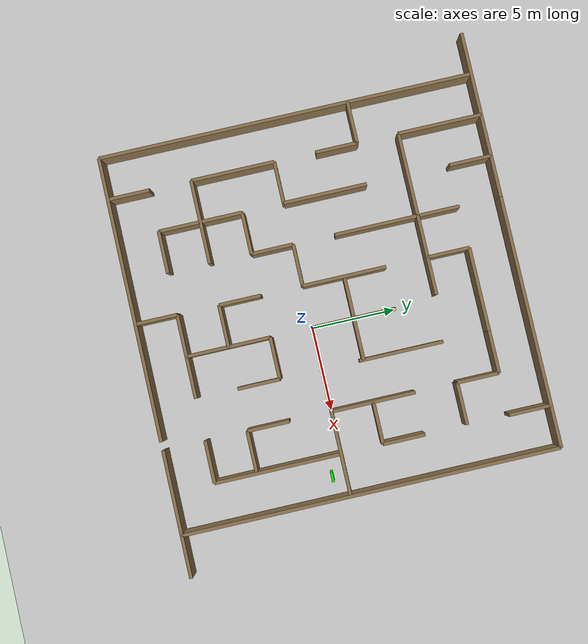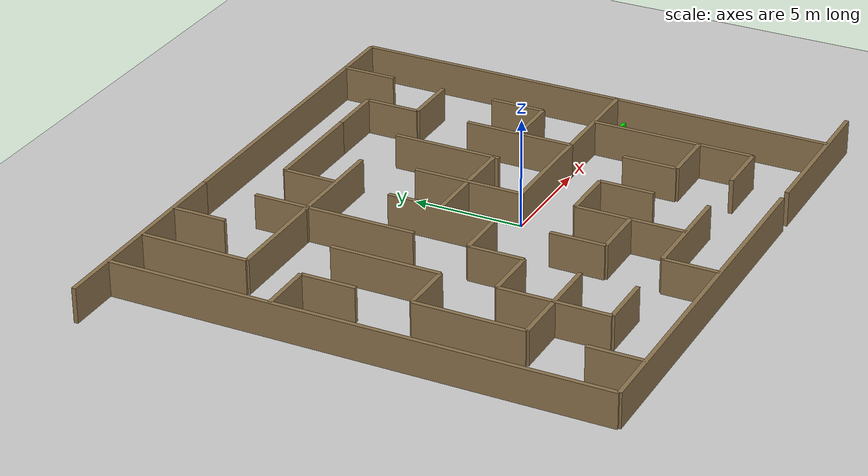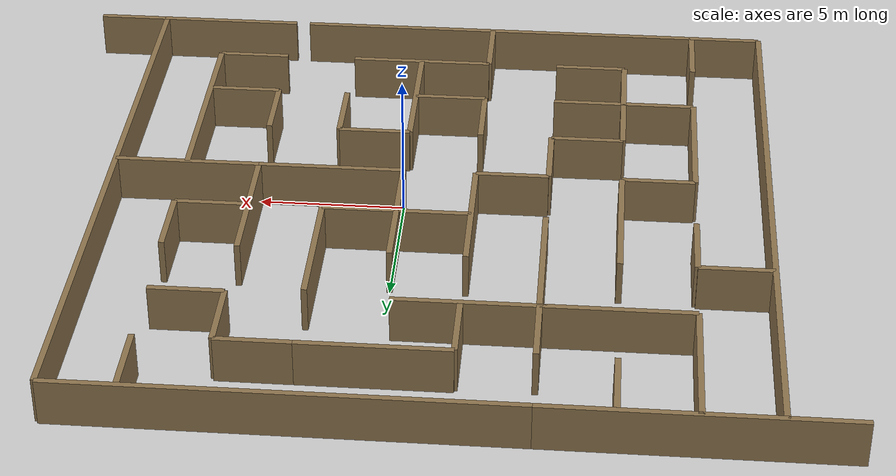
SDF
<?xml version="1.0" ?>
<sdf version="1.6">
  <world name="maze_world">

    <include>
      <uri>model://ground_plane</uri>
    </include>
    <include>
      <uri>model://sun</uri>
    </include>

    <physics type="ode">
      <real_time_update_rate>1000.0</real_time_update_rate>
      <max_step_size>0.001</max_step_size>
      <real_time_factor>1</real_time_factor>
    </physics>

    <!-- ════════════════════
         미로: 25x25m (실제 22.5x22.5), 셀 2.5m, 9x9
         입구: 북쪽 col=1 (x=-8.75, y=12.5)
         출구: 남쪽 col=7 (x=6.25, y=-10.0)
         ════════════════════ -->

    <!-- 외벽 -->
    <model name="outer_N_left">
      <static>true</static>
      <pose>-10.0000 12.5000 0.8000 0 0 0</pose>
      <link name="link">
        <collision name="collision">
          <geometry><box><size>10.0000 0.2000 1.6000</size></box></geometry>
        </collision>
        <visual name="visual">
          <geometry><box><size>10.0000 0.2000 1.6000</size></box></geometry>
          <material><ambient>0.45 0.35 0.25 1</ambient><diffuse>0.55 0.45 0.30 1</diffuse></material>
        </visual>
      </link>
    </model>
    <model name="outer_N_right">
      <static>true</static>
      <pose>2.5000 12.5000 0.8000 0 0 0</pose>
      <link name="link">
        <collision name="collision">
          <geometry><box><size>15.0000 0.2000 1.6000</size></box></geometry>
        </collision>
        <visual name="visual">
          <geometry><box><size>15.0000 0.2000 1.6000</size></box></geometry>
          <material><ambient>0.45 0.35 0.25 1</ambient><diffuse>0.55 0.45 0.30 1</diffuse></material>
        </visual>
      </link>
    </model>
    <model name="outer_S_left">
      <static>true</static>
      <pose>-4.0000 -10.0000 0.8000 0 0 0</pose>
      <link name="link">
        <collision name="collision">
          <geometry><box><size>17.0000 0.2000 1.6000</size></box></geometry>
        </collision>
        <visual name="visual">
          <geometry><box><size>17.0000 0.2000 1.6000</size></box></geometry>
          <material><ambient>0.45 0.35 0.25 1</ambient><diffuse>0.55 0.45 0.30 1</diffuse></material>
        </visual>
      </link>
    </model>
    <model name="outer_S_right">
      <static>true</static>
      <pose>8.7500 -10.0000 0.8000 0 0 0</pose>
      <link name="link">
        <collision name="collision">
          <geometry><box><size>7.5000 0.2000 1.6000</size></box></geometry>
        </collision>
        <visual name="visual">
          <geometry><box><size>7.5000 0.2000 1.6000</size></box></geometry>
          <material><ambient>0.45 0.35 0.25 1</ambient><diffuse>0.55 0.45 0.30 1</diffuse></material>
        </visual>
      </link>
    </model>
    <model name="outer_W">
      <static>true</static>
      <pose>-12.5000 1.2500 0.8000 0 0 0</pose>
      <link name="link">
        <collision name="collision">
          <geometry><box><size>0.2000 22.5000 1.6000</size></box></geometry>
        </collision>
        <visual name="visual">
          <geometry><box><size>0.2000 22.5000 1.6000</size></box></geometry>
          <material><ambient>0.45 0.35 0.25 1</ambient><diffuse>0.55 0.45 0.30 1</diffuse></material>
        </visual>
      </link>
    </model>
    <model name="outer_E">
      <static>true</static>
      <pose>10.0000 1.2500 0.8000 0 0 0</pose>
      <link name="link">
        <collision name="collision">
          <geometry><box><size>0.2000 22.5000 1.6000</size></box></geometry>
        </collision>
        <visual name="visual">
          <geometry><box><size>0.2000 22.5000 1.6000</size></box></geometry>
          <material><ambient>0.45 0.35 0.25 1</ambient><diffuse>0.55 0.45 0.30 1</diffuse></material>
        </visual>
      </link>
    </model>
    <model name="h_1_0">
      <static>true</static>
      <pose>0.0000 10.0000 0.8000 0 0 0</pose>
      <link name="link">
        <collision name="collision">
          <geometry><box><size>5.0000 0.2000 1.6000</size></box></geometry>
        </collision>
        <visual name="visual">
          <geometry><box><size>5.0000 0.2000 1.6000</size></box></geometry>
          <material>
            <ambient>0.45 0.35 0.25 1</ambient>
            <diffuse>0.55 0.45 0.30 1</diffuse>
          </material>
        </visual>
      </link>
    </model>
    <model name="h_1_1">
      <static>true</static>
      <pose>3.7500 10.0000 0.8000 0 0 0</pose>
      <link name="link">
        <collision name="collision">
          <geometry><box><size>2.5000 0.2000 1.6000</size></box></geometry>
        </collision>
        <visual name="visual">
          <geometry><box><size>2.5000 0.2000 1.6000</size></box></geometry>
          <material>
            <ambient>0.45 0.35 0.25 1</ambient>
            <diffuse>0.55 0.45 0.30 1</diffuse>
          </material>
        </visual>
      </link>
    </model>
    <model name="h_2_2">
      <static>true</static>
      <pose>-7.5000 7.5000 0.8000 0 0 0</pose>
      <link name="link">
        <collision name="collision">
          <geometry><box><size>5.0000 0.2000 1.6000</size></box></geometry>
        </collision>
        <visual name="visual">
          <geometry><box><size>5.0000 0.2000 1.6000</size></box></geometry>
          <material>
            <ambient>0.45 0.35 0.25 1</ambient>
            <diffuse>0.55 0.45 0.30 1</diffuse>
          </material>
        </visual>
      </link>
    </model>
    <model name="h_2_3">
      <static>true</static>
      <pose>-2.7500 7.5000 0.8000 0 0 0</pose>
      <link name="link">
        <collision name="collision">
          <geometry><box><size>5.0000 0.2000 1.6000</size></box></geometry>
        </collision>
        <visual name="visual">
          <geometry><box><size>5.0000 0.2000 1.6000</size></box></geometry>
          <material>
            <ambient>0.45 0.35 0.25 1</ambient>
            <diffuse>0.55 0.45 0.30 1</diffuse>
          </material>
        </visual>
      </link>
    </model>
    <model name="h_2_4">
      <static>true</static>
      <pose>6.2500 7.5000 0.8000 0 0 0</pose>
      <link name="link">
        <collision name="collision">
          <geometry><box><size>2.5000 0.2000 1.6000</size></box></geometry>
        </collision>
        <visual name="visual">
          <geometry><box><size>2.5000 0.2000 1.6000</size></box></geometry>
          <material>
            <ambient>0.45 0.35 0.25 1</ambient>
            <diffuse>0.55 0.45 0.30 1</diffuse>
          </material>
        </visual>
      </link>
    </model>
    <model name="h_3_5">
      <static>true</static>
      <pose>-11.2500 5.0000 0.8000 0 0 0</pose>
      <link name="link">
        <collision name="collision">
          <geometry><box><size>2.5000 0.2000 1.6000</size></box></geometry>
        </collision>
        <visual name="visual">
          <geometry><box><size>2.5000 0.2000 1.6000</size></box></geometry>
          <material>
            <ambient>0.45 0.35 0.25 1</ambient>
            <diffuse>0.55 0.45 0.30 1</diffuse>
          </material>
        </visual>
      </link>
    </model>
    <model name="h_4_6">
      <static>true</static>
      <pose>0.0000 2.5000 0.8000 0 0 0</pose>
      <link name="link">
        <collision name="collision">
          <geometry><box><size>5.0000 0.2000 1.6000</size></box></geometry>
        </collision>
        <visual name="visual">
          <geometry><box><size>5.0000 0.2000 1.6000</size></box></geometry>
          <material>
            <ambient>0.45 0.35 0.25 1</ambient>
            <diffuse>0.55 0.45 0.30 1</diffuse>
          </material>
        </visual>
      </link>
    </model>
    <model name="h_4_7">
      <static>true</static>
      <pose>6.2500 2.5000 0.8000 0 0 0</pose>
      <link name="link">
        <collision name="collision">
          <geometry><box><size>2.5000 0.2000 1.6000</size></box></geometry>
        </collision>
        <visual name="visual">
          <geometry><box><size>2.5000 0.2000 1.6000</size></box></geometry>
          <material>
            <ambient>0.45 0.35 0.25 1</ambient>
            <diffuse>0.55 0.45 0.30 1</diffuse>
          </material>
        </visual>
      </link>
    </model>
    <model name="h_5_8">
      <static>true</static>
      <pose>-8.7500 0.0000 0.8000 0 0 0</pose>
      <link name="link">
        <collision name="collision">
          <geometry><box><size>2.5000 0.2000 1.6000</size></box></geometry>
        </collision>
        <visual name="visual">
          <geometry><box><size>2.5000 0.2000 1.6000</size></box></geometry>
          <material>
            <ambient>0.45 0.35 0.25 1</ambient>
            <diffuse>0.55 0.45 0.30 1</diffuse>
          </material>
        </visual>
      </link>
    </model>
    <model name="h_5_9">
      <static>true</static>
      <pose>-3.7500 0.0000 0.8000 0 0 0</pose>
      <link name="link">
        <collision name="collision">
          <geometry><box><size>2.5000 0.2000 1.6000</size></box></geometry>
        </collision>
        <visual name="visual">
          <geometry><box><size>2.5000 0.2000 1.6000</size></box></geometry>
          <material>
            <ambient>0.45 0.35 0.25 1</ambient>
            <diffuse>0.55 0.45 0.30 1</diffuse>
          </material>
        </visual>
      </link>
    </model>
    <model name="h_5_10">
      <static>true</static>
      <pose>2.5000 0.0000 0.8000 0 0 0</pose>
      <link name="link">
        <collision name="collision">
          <geometry><box><size>5.0000 0.2000 1.6000</size></box></geometry>
        </collision>
        <visual name="visual">
          <geometry><box><size>5.0000 0.2000 1.6000</size></box></geometry>
          <material>
            <ambient>0.45 0.35 0.25 1</ambient>
            <diffuse>0.55 0.45 0.30 1</diffuse>
          </material>
        </visual>
      </link>
    </model>
    <model name="h_5_11">
      <static>true</static>
      <pose>7.5000 0.0000 0.8000 0 0 0</pose>
      <link name="link">
        <collision name="collision">
          <geometry><box><size>5.0000 0.2000 1.6000</size></box></geometry>
        </collision>
        <visual name="visual">
          <geometry><box><size>5.0000 0.2000 1.6000</size></box></geometry>
          <material>
            <ambient>0.45 0.35 0.25 1</ambient>
            <diffuse>0.55 0.45 0.30 1</diffuse>
          </material>
        </visual>
      </link>
    </model>
    <model name="h_6_12">
      <static>true</static>
      <pose>-6.2500 -2.5000 0.8000 0 0 0</pose>
      <link name="link">
        <collision name="collision">
          <geometry><box><size>2.5000 0.2000 1.6000</size></box></geometry>
        </collision>
        <visual name="visual">
          <geometry><box><size>2.5000 0.2000 1.6000</size></box></geometry>
          <material>
            <ambient>0.45 0.35 0.25 1</ambient>
            <diffuse>0.55 0.45 0.30 1</diffuse>
          </material>
        </visual>
      </link>
    </model>
    <model name="h_6_13">
      <static>true</static>
      <pose>1.2500 -2.5000 0.8000 0 0 0</pose>
      <link name="link">
        <collision name="collision">
          <geometry><box><size>2.5000 0.2000 1.6000</size></box></geometry>
        </collision>
        <visual name="visual">
          <geometry><box><size>2.5000 0.2000 1.6000</size></box></geometry>
          <material>
            <ambient>0.45 0.35 0.25 1</ambient>
            <diffuse>0.55 0.45 0.30 1</diffuse>
          </material>
        </visual>
      </link>
    </model>
    <model name="h_7_14">
      <static>true</static>
      <pose>-7.5000 -5.0000 0.8000 0 0 0</pose>
      <link name="link">
        <collision name="collision">
          <geometry><box><size>5.0000 0.2000 1.6000</size></box></geometry>
        </collision>
        <visual name="visual">
          <geometry><box><size>5.0000 0.2000 1.6000</size></box></geometry>
          <material>
            <ambient>0.45 0.35 0.25 1</ambient>
            <diffuse>0.55 0.45 0.30 1</diffuse>
          </material>
        </visual>
      </link>
    </model>
    <model name="h_7_15">
      <static>true</static>
      <pose>-1.2500 -5.0000 0.8000 0 0 0</pose>
      <link name="link">
        <collision name="collision">
          <geometry><box><size>2.5000 0.2000 1.6000</size></box></geometry>
        </collision>
        <visual name="visual">
          <geometry><box><size>2.5000 0.2000 1.6000</size></box></geometry>
          <material>
            <ambient>0.45 0.35 0.25 1</ambient>
            <diffuse>0.55 0.45 0.30 1</diffuse>
          </material>
        </visual>
      </link>
    </model>
    <model name="h_7_16">
      <static>true</static>
      <pose>6.2500 -5.0000 0.8000 0 0 0</pose>
      <link name="link">
        <collision name="collision">
          <geometry><box><size>2.5000 0.2000 1.6000</size></box></geometry>
        </collision>
        <visual name="visual">
          <geometry><box><size>2.5000 0.2000 1.6000</size></box></geometry>
          <material>
            <ambient>0.45 0.35 0.25 1</ambient>
            <diffuse>0.55 0.45 0.30 1</diffuse>
          </material>
        </visual>
      </link>
    </model>
    <model name="h_8_17">
      <static>true</static>
      <pose>-6.2500 -7.5000 0.8000 0 0 0</pose>
      <link name="link">
        <collision name="collision">
          <geometry><box><size>2.5000 0.2000 1.6000</size></box></geometry>
        </collision>
        <visual name="visual">
          <geometry><box><size>2.5000 0.2000 1.6000</size></box></geometry>
          <material>
            <ambient>0.45 0.35 0.25 1</ambient>
            <diffuse>0.55 0.45 0.30 1</diffuse>
          </material>
        </visual>
      </link>
    </model>
    <model name="h_8_18">
      <static>true</static>
      <pose>0.0000 -7.5000 0.8000 0 0 0</pose>
      <link name="link">
        <collision name="collision">
          <geometry><box><size>5.0000 0.2000 1.6000</size></box></geometry>
        </collision>
        <visual name="visual">
          <geometry><box><size>5.0000 0.2000 1.6000</size></box></geometry>
          <material>
            <ambient>0.45 0.35 0.25 1</ambient>
            <diffuse>0.55 0.45 0.30 1</diffuse>
          </material>
        </visual>
      </link>
    </model>
    <model name="h_8_19">
      <static>true</static>
      <pose>6.2500 -7.5000 0.8000 0 0 0</pose>
      <link name="link">
        <collision name="collision">
          <geometry><box><size>2.5000 0.2000 1.6000</size></box></geometry>
        </collision>
        <visual name="visual">
          <geometry><box><size>2.5000 0.2000 1.6000</size></box></geometry>
          <material>
            <ambient>0.45 0.35 0.25 1</ambient>
            <diffuse>0.55 0.45 0.30 1</diffuse>
          </material>
        </visual>
      </link>
    </model>
    <model name="v_1_20">
      <static>true</static>
      <pose>-10.0000 10.0000 0.8000 0 0 0</pose>
      <link name="link">
        <collision name="collision">
          <geometry><box><size>0.2000 5.0000 1.6000</size></box></geometry>
        </collision>
        <visual name="visual">
          <geometry><box><size>0.2000 5.0000 1.6000</size></box></geometry>
          <material>
            <ambient>0.45 0.35 0.25 1</ambient>
            <diffuse>0.55 0.45 0.30 1</diffuse>
          </material>
        </visual>
      </link>
    </model>
    <model name="v_1_21">
      <static>true</static>
      <pose>-10.0000 3.7500 0.8000 0 0 0</pose>
      <link name="link">
        <collision name="collision">
          <geometry><box><size>0.2000 2.5000 1.6000</size></box></geometry>
        </collision>
        <visual name="visual">
          <geometry><box><size>0.2000 2.5000 1.6000</size></box></geometry>
          <material>
            <ambient>0.45 0.35 0.25 1</ambient>
            <diffuse>0.55 0.45 0.30 1</diffuse>
          </material>
        </visual>
      </link>
    </model>
    <model name="v_1_22">
      <static>true</static>
      <pose>-10.0000 -2.5000 0.8000 0 0 0</pose>
      <link name="link">
        <collision name="collision">
          <geometry><box><size>0.2000 5.0000 1.6000</size></box></geometry>
        </collision>
        <visual name="visual">
          <geometry><box><size>0.2000 5.0000 1.6000</size></box></geometry>
          <material>
            <ambient>0.45 0.35 0.25 1</ambient>
            <diffuse>0.55 0.45 0.30 1</diffuse>
          </material>
        </visual>
      </link>
    </model>
    <model name="v_1_23">
      <static>true</static>
      <pose>-10.0000 -8.7500 0.8000 0 0 0</pose>
      <link name="link">
        <collision name="collision">
          <geometry><box><size>0.2000 2.5000 1.6000</size></box></geometry>
        </collision>
        <visual name="visual">
          <geometry><box><size>0.2000 2.5000 1.6000</size></box></geometry>
          <material>
            <ambient>0.45 0.35 0.25 1</ambient>
            <diffuse>0.55 0.45 0.30 1</diffuse>
          </material>
        </visual>
      </link>
    </model>
    <model name="v_2_24">
      <static>true</static>
      <pose>-7.5000 11.2500 0.8000 0 0 0</pose>
      <link name="link">
        <collision name="collision">
          <geometry><box><size>0.2000 2.5000 1.6000</size></box></geometry>
        </collision>
        <visual name="visual">
          <geometry><box><size>0.2000 2.5000 1.6000</size></box></geometry>
          <material>
            <ambient>0.45 0.35 0.25 1</ambient>
            <diffuse>0.55 0.45 0.30 1</diffuse>
          </material>
        </visual>
      </link>
    </model>
    <model name="v_2_25">
      <static>true</static>
      <pose>-7.5000 2.5000 0.8000 0 0 0</pose>
      <link name="link">
        <collision name="collision">
          <geometry><box><size>0.2000 5.0000 1.6000</size></box></geometry>
        </collision>
        <visual name="visual">
          <geometry><box><size>0.2000 5.0000 1.6000</size></box></geometry>
          <material>
            <ambient>0.45 0.35 0.25 1</ambient>
            <diffuse>0.55 0.45 0.30 1</diffuse>
          </material>
        </visual>
      </link>
    </model>
    <model name="v_2_26">
      <static>true</static>
      <pose>-7.5000 -5.0000 0.8000 0 0 0</pose>
      <link name="link">
        <collision name="collision">
          <geometry><box><size>0.2000 5.0000 1.6000</size></box></geometry>
        </collision>
        <visual name="visual">
          <geometry><box><size>0.2000 5.0000 1.6000</size></box></geometry>
          <material>
            <ambient>0.45 0.35 0.25 1</ambient>
            <diffuse>0.55 0.45 0.30 1</diffuse>
          </material>
        </visual>
      </link>
    </model>
    <model name="v_3_27">
      <static>true</static>
      <pose>-5.0000 6.2500 0.8000 0 0 0</pose>
      <link name="link">
        <collision name="collision">
          <geometry><box><size>0.2000 7.5000 1.6000</size></box></geometry>
        </collision>
        <visual name="visual">
          <geometry><box><size>0.2000 7.5000 1.6000</size></box></geometry>
          <material>
            <ambient>0.45 0.35 0.25 1</ambient>
            <diffuse>0.55 0.45 0.30 1</diffuse>
          </material>
        </visual>
      </link>
    </model>
    <model name="v_3_28">
      <static>true</static>
      <pose>-5.0000 -1.2500 0.8000 0 0 0</pose>
      <link name="link">
        <collision name="collision">
          <geometry><box><size>0.2000 2.5000 1.6000</size></box></geometry>
        </collision>
        <visual name="visual">
          <geometry><box><size>0.2000 2.5000 1.6000</size></box></geometry>
          <material>
            <ambient>0.45 0.35 0.25 1</ambient>
            <diffuse>0.55 0.45 0.30 1</diffuse>
          </material>
        </visual>
      </link>
    </model>
    <model name="v_4_29">
      <static>true</static>
      <pose>-2.5000 8.7500 0.8000 0 0 0</pose>
      <link name="link">
        <collision name="collision">
          <geometry><box><size>0.2000 2.5000 1.6000</size></box></geometry>
        </collision>
        <visual name="visual">
          <geometry><box><size>0.2000 2.5000 1.6000</size></box></geometry>
          <material>
            <ambient>0.45 0.35 0.25 1</ambient>
            <diffuse>0.55 0.45 0.30 1</diffuse>
          </material>
        </visual>
      </link>
    </model>
    <model name="v_4_30">
      <static>true</static>
      <pose>-2.5000 2.5000 0.8000 0 0 0</pose>
      <link name="link">
        <collision name="collision">
          <geometry><box><size>0.2000 5.0000 1.6000</size></box></geometry>
        </collision>
        <visual name="visual">
          <geometry><box><size>0.2000 5.0000 1.6000</size></box></geometry>
          <material>
            <ambient>0.45 0.35 0.25 1</ambient>
            <diffuse>0.55 0.45 0.30 1</diffuse>
          </material>
        </visual>
      </link>
    </model>
    <model name="v_4_31">
      <static>true</static>
      <pose>-2.5000 -3.7500 0.8000 0 0 0</pose>
      <link name="link">
        <collision name="collision">
          <geometry><box><size>0.2000 2.5000 1.6000</size></box></geometry>
        </collision>
        <visual name="visual">
          <geometry><box><size>0.2000 2.5000 1.6000</size></box></geometry>
          <material>
            <ambient>0.45 0.35 0.25 1</ambient>
            <diffuse>0.55 0.45 0.30 1</diffuse>
          </material>
        </visual>
      </link>
    </model>
    <model name="v_4_32">
      <static>true</static>
      <pose>-2.5000 -8.7500 0.8000 0 0 0</pose>
      <link name="link">
        <collision name="collision">
          <geometry><box><size>0.2000 2.5000 1.6000</size></box></geometry>
        </collision>
        <visual name="visual">
          <geometry><box><size>0.2000 2.5000 1.6000</size></box></geometry>
          <material>
            <ambient>0.45 0.35 0.25 1</ambient>
            <diffuse>0.55 0.45 0.30 1</diffuse>
          </material>
        </visual>
      </link>
    </model>
    <model name="v_5_33">
      <static>true</static>
      <pose>0.0000 2.5000 0.8000 0 0 0</pose>
      <link name="link">
        <collision name="collision">
          <geometry><box><size>0.2000 5.0000 1.6000</size></box></geometry>
        </collision>
        <visual name="visual">
          <geometry><box><size>0.2000 5.0000 1.6000</size></box></geometry>
          <material>
            <ambient>0.45 0.35 0.25 1</ambient>
            <diffuse>0.55 0.45 0.30 1</diffuse>
          </material>
        </visual>
      </link>
    </model>
    <model name="v_5_34">
      <static>true</static>
      <pose>0.0000 -5.0000 0.8000 0 0 0</pose>
      <link name="link">
        <collision name="collision">
          <geometry><box><size>0.2000 5.0000 1.6000</size></box></geometry>
        </collision>
        <visual name="visual">
          <geometry><box><size>0.2000 5.0000 1.6000</size></box></geometry>
          <material>
            <ambient>0.45 0.35 0.25 1</ambient>
            <diffuse>0.55 0.45 0.30 1</diffuse>
          </material>
        </visual>
      </link>
    </model>
    <model name="v_6_35">
      <static>true</static>
      <pose>2.5000 4.7500 0.8000 0 0 0</pose>
      <link name="link">
        <collision name="collision">
          <geometry><box><size>0.2000 5.0000 1.6000</size></box></geometry>
        </collision>
        <visual name="visual">
          <geometry><box><size>0.2000 5.0000 1.6000</size></box></geometry>
          <material>
            <ambient>0.45 0.35 0.25 1</ambient>
            <diffuse>0.55 0.45 0.30 1</diffuse>
          </material>
        </visual>
      </link>
    </model>
    <model name="v_6_36">
      <static>true</static>
      <pose>2.5000 -3.7500 0.8000 0 0 0</pose>
      <link name="link">
        <collision name="collision">
          <geometry><box><size>0.2000 2.5000 1.6000</size></box></geometry>
        </collision>
        <visual name="visual">
          <geometry><box><size>0.2000 2.5000 1.6000</size></box></geometry>
          <material>
            <ambient>0.45 0.35 0.25 1</ambient>
            <diffuse>0.55 0.45 0.30 1</diffuse>
          </material>
        </visual>
      </link>
    </model>
    <model name="v_7_37">
      <static>true</static>
      <pose>5.0000 8.7500 0.8000 0 0 0</pose>
      <link name="link">
        <collision name="collision">
          <geometry><box><size>0.2000 2.5000 1.6000</size></box></geometry>
        </collision>
        <visual name="visual">
          <geometry><box><size>0.2000 2.5000 1.6000</size></box></geometry>
          <material>
            <ambient>0.45 0.35 0.25 1</ambient>
            <diffuse>0.55 0.45 0.30 1</diffuse>
          </material>
        </visual>
      </link>
    </model>
    <model name="v_7_38">
      <static>true</static>
      <pose>5.0000 2.5000 0.8000 0 0 0</pose>
      <link name="link">
        <collision name="collision">
          <geometry><box><size>0.2000 5.0000 1.6000</size></box></geometry>
        </collision>
        <visual name="visual">
          <geometry><box><size>0.2000 5.0000 1.6000</size></box></geometry>
          <material>
            <ambient>0.45 0.35 0.25 1</ambient>
            <diffuse>0.55 0.45 0.30 1</diffuse>
          </material>
        </visual>
      </link>
    </model>
    <model name="v_7_39">
      <static>true</static>
      <pose>5.0000 -3.7500 0.8000 0 0 0</pose>
      <link name="link">
        <collision name="collision">
          <geometry><box><size>0.2000 2.5000 1.6000</size></box></geometry>
        </collision>
        <visual name="visual">
          <geometry><box><size>0.2000 2.5000 1.6000</size></box></geometry>
          <material>
            <ambient>0.45 0.35 0.25 1</ambient>
            <diffuse>0.55 0.45 0.30 1</diffuse>
          </material>
        </visual>
      </link>
    </model>
    <model name="v_8_40">
      <static>true</static>
      <pose>7.5000 11.2500 0.8000 0 0 0</pose>
      <link name="link">
        <collision name="collision">
          <geometry><box><size>0.2000 2.5000 1.6000</size></box></geometry>
        </collision>
        <visual name="visual">
          <geometry><box><size>0.2000 2.5000 1.6000</size></box></geometry>
          <material>
            <ambient>0.45 0.35 0.25 1</ambient>
            <diffuse>0.55 0.45 0.30 1</diffuse>
          </material>
        </visual>
      </link>
    </model>
    <model name="v_8_41">
      <static>true</static>
      <pose>7.5000 3.7500 0.8000 0 0 0</pose>
      <link name="link">
        <collision name="collision">
          <geometry><box><size>0.2000 2.5000 1.6000</size></box></geometry>
        </collision>
        <visual name="visual">
          <geometry><box><size>0.2000 2.5000 1.6000</size></box></geometry>
          <material>
            <ambient>0.45 0.35 0.25 1</ambient>
            <diffuse>0.55 0.45 0.30 1</diffuse>
          </material>
        </visual>
      </link>
    </model>
    <model name="v_8_42">
      <static>true</static>
      <pose>7.5000 -3.7500 0.8000 0 0 0</pose>
      <link name="link">
        <collision name="collision">
          <geometry><box><size>0.2000 7.5000 1.6000</size></box></geometry>
        </collision>
        <visual name="visual">
          <geometry><box><size>0.2000 7.5000 1.6000</size></box></geometry>
          <material>
            <ambient>0.45 0.35 0.25 1</ambient>
            <diffuse>0.55 0.45 0.30 1</diffuse>
          </material>
        </visual>
      </link>
    </model>

    <!-- 입구 초록 표지판 -->

    <!-- 출구 초록 표지판 -->
    <model name="sign_goal">
      <static>true</static>
      <pose>8.7500 -0.8000 0.5000 0 0 0</pose>
      <link name="link">
        <collision name="collision">
          <geometry><box><size>0.6 0.15 1.0</size></box></geometry>
        </collision>
        <visual name="visual">
          <geometry><box><size>0.6 0.15 1.0</size></box></geometry>
          <material>
            <ambient>0.0 0.9 0.0 1</ambient><diffuse>0.0 0.9 0.0 1</diffuse>
            <emissive>0.0 0.5 0.0 1</emissive>
          </material>
        </visual>
      </link>
    </model>

<!-- 빨간 표지판 -->

  </world>
</sdf>
